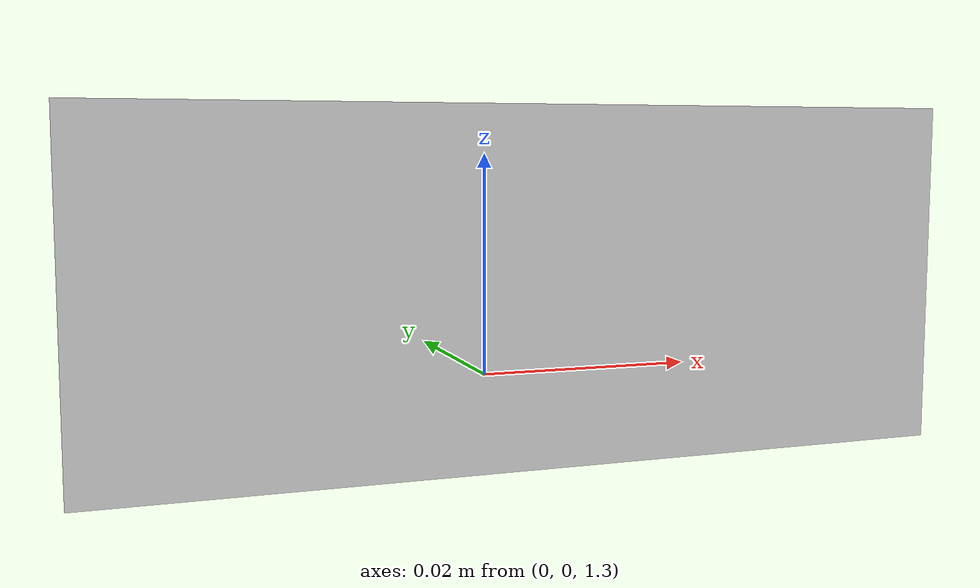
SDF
<sdf version="1.11">
  <model name="container2">
    <static>false</static>

    <link name="base_link">
      <pose>0 0 1.295 0 0 0</pose> <!-- half of height to float above origin -->

      <inertial>
        <mass>2200</mass> <!-- realistic container weight when empty -->
        <inertia>
          <ixx>1000</ixx>
          <iyy>1000</iyy>
          <izz>1000</izz>
          <ixy>0</ixy>
          <ixz>0</ixz>
          <iyz>0</iyz>
        </inertia>
      </inertial>

      <collision name="collision">
        <geometry>
              <mesh>
                <uri>model://container4/meshes/model.dae</uri>
                 <scale>0.01 0.01 0.01</scale>
              </mesh>
            </geometry>
            <surface>
              <contact>
                <collide_without_contact>true</collide_without_contact>
              </contact>
            </surface>
      </collision>
        <visual name="visual">
         <geometry>
          <mesh>
            <uri>model://container4/meshes/model.dae</uri>
             <scale>0.01 0.01 0.01</scale>
          </mesh>
        </geometry>

      </visual>
    </link>

    <plugin name="vrx::Surface" filename="libSurface.so">
      <link_name>base_link</link_name>
      <hull_length>6.06</hull_length>
      <hull_radius>0.5</hull_radius>
      <fluid_level>0</fluid_level>
      <points>
        <point>2.9 1.2 0</point>
        <point>-2.9 1.2 0</point>
        <point>2.9 -1.2 0</point>
        <point>-2.9 -1.2 0</point>
      </points>
      <wavefield>
        <topic>/vrx/wavefield/parameters</topic>
      </wavefield>
    </plugin>

    <plugin name="vrx::SimpleHydrodynamics" filename="libSimpleHydrodynamics.so">
      <link_name>base_link</link_name>
      <xDotU>0.0</xDotU>
      <yDotV>0.0</yDotV>
      <nDotR>0.0</nDotR>
      <xU>300.0</xU>
      <xUU>500.0</xUU>
      <yV>300.0</yV>
      <yVV>400.0</yVV>
      <zW>2000.0</zW> <!-- large value to simulate strong vertical resistance (buoyancy) -->
      <kP>1000.0</kP>
      <kPP>1200.0</kPP>
      <mQ>1000.0</mQ>
      <mQQ>1200.0</mQQ>
      <nR>1000.0</nR>
      <nRR>1200.0</nRR>
    </plugin>
  </model>
</sdf>
